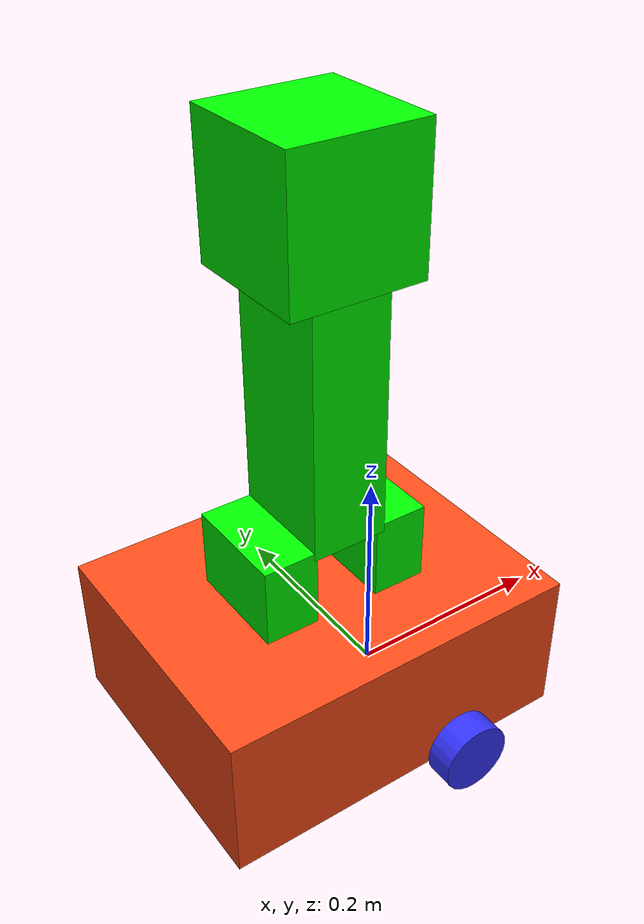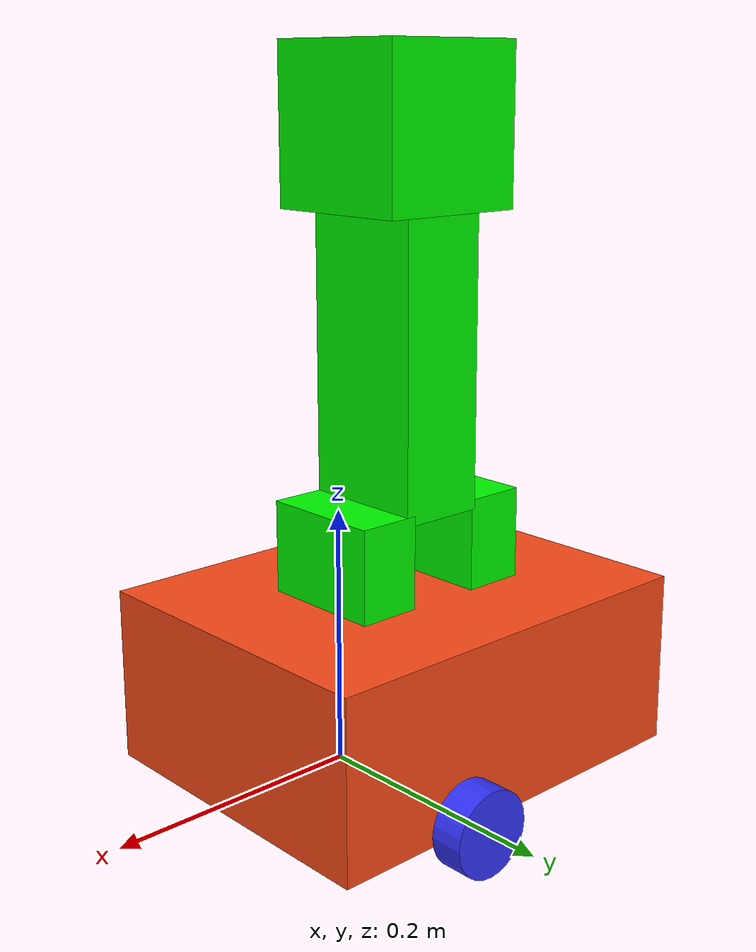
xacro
<?xml version="1.0" ?>
<robot name='robot' xmlns:xacro="http://ros.org/wiki/xacro">

    <xacro:include filename="gazebo.urdf.xacro" />
    <!--xacro:include filename="$(find robot_description)/urdf/lidar.urdf.xacro" /-->
    <!--xacro:include filename="$(find robot_description)/urdf/depth.urdf.xacro" /-->

    <xacro:property name="chassis_length" value="0.335"/>
    <xacro:property name="chassis_width" value="0.265"/>
    <xacro:property name="chassis_height" value="0.138"/>
    <xacro:property name="wheel_radius" value="0.033"/>
    <xacro:property name="wheel_thickness" value="0.026"/>
    <xacro:property name="wheel_mass" value="0.05"/>
    <xacro:property name="wheel_offset_x" value="0.226"/>
    <xacro:property name="wheel_offset_y" value="0.1485"/>
    <xacro:property name="wheel_offset_z" value="0.01"/>
    <xacro:property name="caster_wheel_radius" value="0.01"/>
    <xacro:property name="caster_wheel_mass" value="0.01"/>
    <xacro:property name="caster_wheel_offset_x" value="0.075"/>
    <xacro:property name="caster_wheel_offset_z" value="${wheel_offset_z - wheel_radius + caster_wheel_radius}"/>

    <xacro:property name="herobrin_body_offset_x" value="${chassis_length/2}"/>
    <xacro:property name="herobrin_body_offset_z" value="${chassis_height+0.19}"/>
    <xacro:property name="herobrin_body_length" value="0.07"/>
    <xacro:property name="herobrin_body_width" value="0.1"/>
    <xacro:property name="herobrin_body_height" value="0.25"/>

    <xacro:property name="herobrin_head_offset_x" value="${chassis_length/2}"/>
    <xacro:property name="herobrin_head_offset_z" value="${chassis_height+0.35}"/>

    <xacro:property name="herobrin_head_length" value="0.12"/>
    <xacro:property name="herobrin_head_width" value="0.12"/>
    <xacro:property name="herobrin_head_height" value="0.12"/>

    <xacro:property name="herobrin_leg_left_offset_x" value="${0.22}" />
    <xacro:property name="herobrin_leg_left_offset_y" value="${0}"/>
    <xacro:property name="herobrin_leg_left_offset_z" value="${chassis_height+0.0225}"/>
    <xacro:property name="herobrin_leg_left_length" value="0.05"/>
    <xacro:property name="herobrin_leg_left_width" value="0.1"/>
    <xacro:property name="herobrin_leg_left_height" value="0.1"/>

    <xacro:property name="herobrin_leg_right_offset_x" value="${0.11}" />
    <xacro:property name="herobrin_leg_right_offset_y" value="${0}"/>
    <xacro:property name="herobrin_leg_right_offset_z" value="${chassis_height+0.0225}"/>
    <xacro:property name="herobrin_leg_right_length" value="0.05"/>
    <xacro:property name="herobrin_leg_right_width" value="0.1"/>
    <xacro:property name="herobrin_leg_right_height" value="0.1"/>

    <xacro:property name="mass" value="1.0"/>

    <material name="white">
        <color rgba="0 1 0 1" />
    </material>

    <material name="orange">
        <color rgba="1 0.3 0.1 1"/>
    </material>

    <material name="blue">
        <color rgba="0.2 0.2 1 1"/>
    </material>

    <material name="black">
        <color rgba="0 0 0 1"/>
    </material>

    <material name="red">
        <color rgba="1 0 0 1"/>
    </material>

    <link name="base_link">
    </link>

    <link name="base_footprint">
    </link>

    <joint name="base_footprint_joint" type="fixed">
        <parent link="base_link"/>
        <child link="base_footprint"/>
        <origin xyz="0 0 -0.138" rpy="0 0 0"/>
    </joint>

    <joint name="chassis_joint" type="fixed">
        <parent link="base_link"/>
        <child link="chassis"/>
        <origin xyz="${-wheel_offset_x} 0 ${-wheel_offset_z}"/>
    </joint>

    <link name='chassis'>

    <inertial>
        <origin xyz="${chassis_length/2} 0 ${chassis_height/2}" rpy="0 0 0"/>
        <mass value="${mass}" />
        <inertia ixx="${(1/12) * mass * (chassis_width*chassis_width+chassis_height*chassis_height)}" ixy="0.0" ixz="0.0"
                 iyy="${(1/12) * mass * (chassis_length*chassis_length+chassis_height*chassis_height)}" iyz="0.0"
                 izz="${(1/12) * mass * (chassis_length*chassis_length+chassis_width*chassis_width)}" />
    </inertial>
    <visual>
        <origin xyz="${chassis_length/2} 0 ${chassis_height/2}"/>
        <geometry>
            <box size="${chassis_length} ${chassis_width} ${chassis_height}"/>
        </geometry>
        <material name="orange"/>
    </visual>
    <collision>
        <origin xyz="${chassis_length/2} 0 ${chassis_height/2}"/>
        <geometry>
            <box size="${chassis_length} ${chassis_width} ${chassis_height}"/>
        </geometry>
    </collision>
    </link>

    <gazebo reference="chassis">
        <material>Gazebo/Orange</material>
    </gazebo>

    <joint name="left_wheel_joint" type="continuous">
        <parent link="base_link"/>
        <child link="left_wheel"/>
        <origin xyz="0 ${wheel_offset_y} 0" rpy="-${pi/2} 0 0" />
        <axis xyz="0 0 1"/>
    </joint>

    <link name="left_wheel">
        <visual>
            <geometry>
                <cylinder radius="${wheel_radius}" length="${wheel_thickness}"/>
            </geometry>
            <material name="blue"/>
        </visual>
        <collision>
            <geometry>
                <sphere radius="${wheel_radius}"/>
            </geometry>
        </collision>
        <inertial>
            <origin xyz="0 0 0" rpy="0 0 0"/>
            <mass value="${wheel_mass}" />
            <inertia ixx="${(1/12) * wheel_mass * (3*wheel_radius*wheel_radius + wheel_thickness*wheel_thickness)}" ixy="0.0" ixz="0.0"
                     iyy="${(1/12) * wheel_mass * (3*wheel_radius*wheel_radius + wheel_thickness*wheel_thickness)}" iyz="0.0"
                     izz="${(1/2) * wheel_mass * (wheel_radius*wheel_radius)}" />
        </inertial>
    </link>

    <gazebo reference="left_wheel">
        <material>Gazebo/Blue</material>
    </gazebo>

    <joint name="right_wheel_joint" type="continuous">
        <parent link="base_link"/>
        <child link="right_wheel"/>
        <origin xyz="0 ${-wheel_offset_y} 0" rpy="${pi/2} 0 0" />
        <axis xyz="0 0 -1"/>
    </joint>

    <link name="right_wheel">
        <visual>
            <geometry>
                <cylinder radius="${wheel_radius}" length="${wheel_thickness}"/>
            </geometry>
            <material name="blue"/>
        </visual>
        <collision>
            <geometry>
                <sphere radius="${wheel_radius}"/>
            </geometry>
        </collision>
        <inertial>
            <origin xyz="0 0 0" rpy="0 0 0"/>
            <mass value="${wheel_mass}" />
            <inertia ixx="${(1/12) * wheel_mass * (3*wheel_radius*wheel_radius + wheel_thickness*wheel_thickness)}" ixy="0.0" ixz="0.0"
                     iyy="${(1/12) * wheel_mass * (3*wheel_radius*wheel_radius + wheel_thickness*wheel_thickness)}" iyz="0.0"
                     izz="${(1/2) * wheel_mass * (wheel_radius*wheel_radius)}" />
        </inertial>
    </link>

    <gazebo reference="right_wheel">
        <material>Gazebo/Blue</material>
    </gazebo>

    <joint name="caster_wheel_joint" type="fixed">
        <parent link="chassis"/>
        <child link="caster_wheel"/>
        <origin xyz="${caster_wheel_offset_x} 0 ${caster_wheel_offset_z}"/>
    </joint>

    <link name="caster_wheel">
        <visual>
            <geometry>
                <sphere radius="${caster_wheel_radius}"/>
            </geometry>
            <material name="white"/>
        </visual>
        <collision>
            <geometry>
                <sphere radius="${caster_wheel_radius}"/>
            </geometry>
        </collision>
        <inertial>
            <origin xyz="0 0 0" rpy="0 0 0"/>
            <mass value="${caster_wheel_mass}" />
            <inertia ixx="${(2/5) * caster_wheel_mass * (caster_wheel_radius*caster_wheel_radius)}" ixy="0.0" ixz="0.0"
                     iyy="${(2/5) * caster_wheel_mass * (caster_wheel_radius*caster_wheel_radius)}" iyz="0.0"
                     izz="${(2/5) * caster_wheel_mass * (caster_wheel_radius*caster_wheel_radius)}" />
        </inertial>
    </link>

    <gazebo reference="caster_wheel">
        <material>Gazebo/White</material>
        <mu1 value="0.001"/>
        <mu2 value="0.001"/>
    </gazebo>

    <!-- Herobrine Body -->
    <joint name="herobrin_body_joint" type="fixed">
        <parent link="chassis"/>
        <child link="herobrin_body"/>
        <origin xyz="${herobrin_body_offset_x} 0 ${herobrin_body_offset_z}"/>
    </joint>

    <link name="herobrin_body">
        <visual>
            <geometry>
                <box size="${herobrin_body_length} ${herobrin_body_width} ${herobrin_body_height}"/>
            </geometry>
            <material name="white"/>
        </visual>
        <collision>
            <geometry>
                <box size="${herobrin_body_length} ${herobrin_body_width} ${herobrin_body_height}"/>
            </geometry>
        </collision>
    </link>

    <gazebo reference="herobrin_body">
        <material>Gazebo/Green</material>
    </gazebo>

    <!-- Herobrine Head -->
    <joint name="herobrin_head_joint" type="fixed">
        <parent link="chassis"/>
        <child link="herobrin_head"/>
        <origin xyz="${herobrin_head_offset_x} 0 ${herobrin_head_offset_z}"/>
    </joint>

    <link name="herobrin_head">
        <visual>
            <geometry>
                <box size="${herobrin_head_length} ${herobrin_head_width} ${herobrin_head_height}"/>
            </geometry>
            <material name="white"/>
        </visual>
        <collision>
            <geometry>
                <box size="${herobrin_head_length} ${herobrin_head_width} ${herobrin_head_height}"/>
            </geometry>
        </collision>
    </link>

    <gazebo reference="herobrin_head">
        <material>Gazebo/Green</material>
    </gazebo>

    <!-- Herobrine Left Leg -->
    <joint name="herobrin_leg_left_joint" type="fixed">
        <parent link="chassis"/>
        <child link="herobrin_leg_left"/>
        <origin xyz="${herobrin_leg_left_offset_x} ${herobrin_leg_left_offset_y} ${herobrin_leg_left_offset_z}"/>
    </joint>

    <link name="herobrin_leg_left">
        <visual>
            <geometry>
                <box size="${herobrin_leg_left_length} ${herobrin_leg_left_width} ${herobrin_leg_left_height}"/>
            </geometry>
            <material name="white"/>
        </visual>
        <collision>
            <geometry>
                <box size="${herobrin_leg_left_length} ${herobrin_leg_left_width} ${herobrin_leg_left_height}"/>
            </geometry>
        </collision>
    </link>

    <gazebo reference="herobrin_leg_left">
        <material>Gazebo/Green</material>
    </gazebo>

    <!-- Herobrine Right Leg -->
    <joint name="herobrin_leg_right_joint" type="fixed">
        <parent link="chassis"/>
        <child link="herobrin_leg_right"/>
        <origin xyz="${herobrin_leg_right_offset_x} ${herobrin_leg_right_offset_y} ${herobrin_leg_right_offset_z}"/>
    </joint>

    <link name="herobrin_leg_right">
        <visual>
            <geometry>
                <box size="${herobrin_leg_right_length} ${herobrin_leg_right_width} ${herobrin_leg_right_height}"/>
            </geometry>
            <material name="white"/>
        </visual>
        <collision>
            <geometry>
                <box size="${herobrin_leg_right_length} ${herobrin_leg_right_width} ${herobrin_leg_right_height}"/>
            </geometry>
        </collision>
    </link>

    <gazebo reference="herobrin_leg_right">
        <material>Gazebo/Green</material>
    </gazebo>

</robot>
